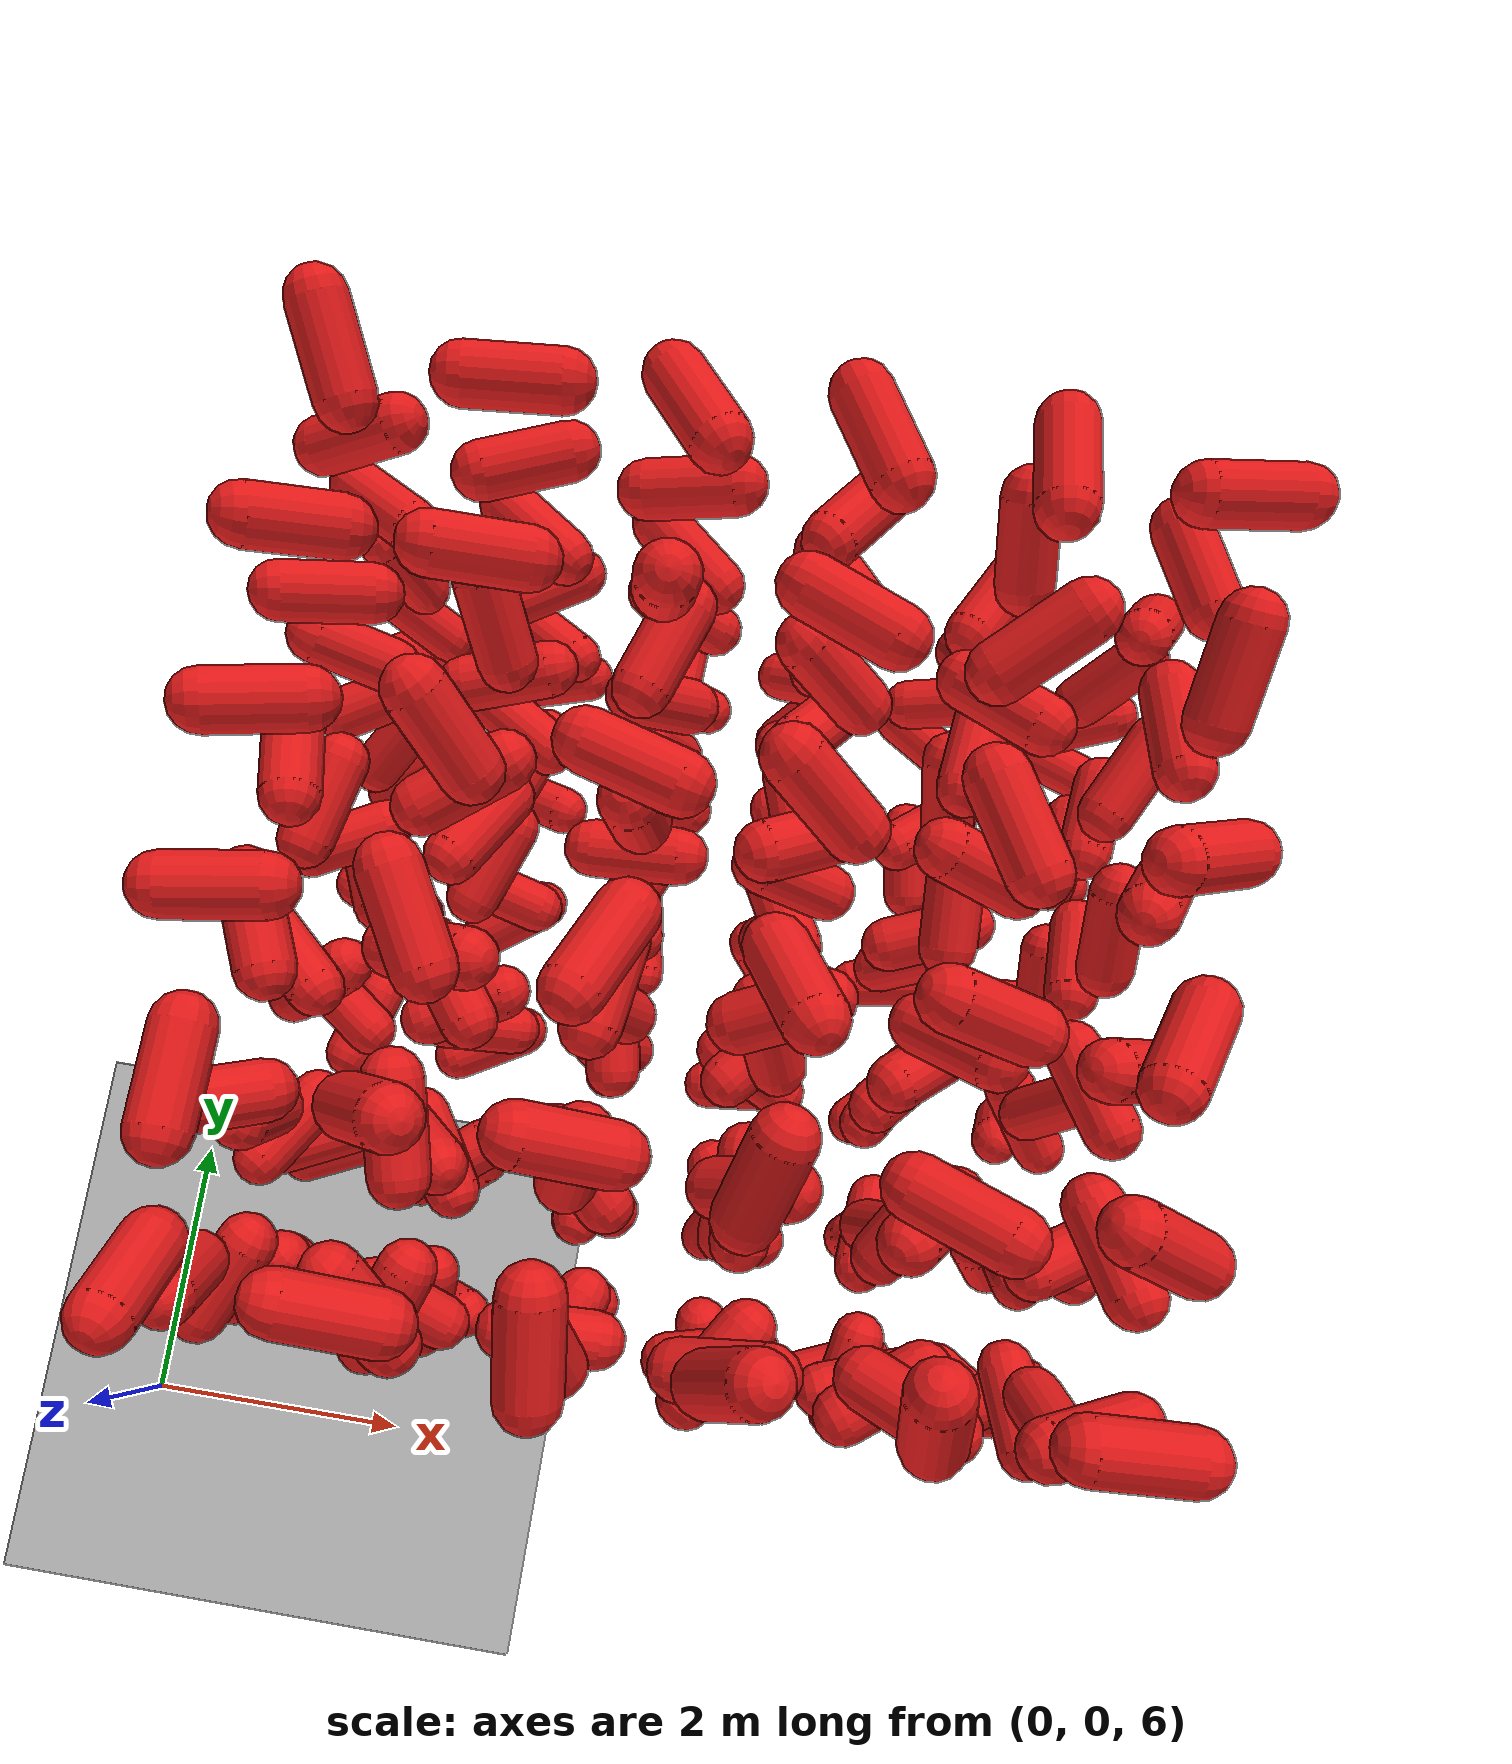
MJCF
<mujoco model="Humanoid and 100 objects">
    <compiler angle="degree"/>

    <option timestep="0.01" iterations="50" solver="PGS" jacobian="sparse" cone="elliptic" tolerance="1e-10"/>

    <size njmax="5000" nconmax="2000" nstack="1000000000"/>

    <default>
        <geom solimp=".9 .9 .01"/>

        <default class="object5">
			<geom type="capsule" material="geom" rgba=".9 .1 .1 1" size="0.200000 0.300000"/>
        </default>
    </default>

    <asset>
        <texture type="skybox" builtin="gradient" width="128" height="128" rgb1=".4 .6 .8" rgb2="0 0 0"/>
        <texture name="texgeom" type="cube" builtin="flat" mark="cross" width="128" height="128"
            rgb1="0.6 0.6 0.6" rgb2="0.6 0.6 0.6" markrgb="1 1 1"/>
        <texture name="texplane" type="2d" builtin="checker" rgb1=".4 .4 .4" rgb2=".6 .6 .6"
            width="512" height="512"/>
        <material name='geom' texture="texgeom" texuniform="true"/>
        <material name='MatPlane' reflectance='0.3' texture="texplane" texrepeat="1 1" texuniform="true"/>
    </asset>

    <visual>
        <quality shadowsize="4096" offsamples="8"/>
        <map znear="0.1" force="0.05"/>
    </visual>

    <statistic extent="4"/>

    <worldbody>
        <light directional="true" diffuse=".8 .8 .8" pos="0 0 10" dir="0 0 -10"/>

        <geom pos="0 0 0" type="plane" size="3 3 .5" rgba=".7 .7 .7 1" material="MatPlane"/>
		<body pos="1.100685 1.100924 6.100636" quat="0.099151 0.833998 -0.326844 0.433348"> <freejoint/> <geom class="object5"/> </body>
		<body pos="1.100665 1.100165 7.200969" quat="-0.034812 -0.574533 -0.021455 0.817459"> <freejoint/> <geom class="object5"/> </body>
		<body pos="1.100813 1.100318 8.300936" quat="0.347340 0.032246 -0.885718 0.306299"> <freejoint/> <geom class="object5"/> </body>
		<body pos="1.100121 1.100844 9.400553" quat="0.505734 0.430077 -0.683994 0.302356"> <freejoint/> <geom class="object5"/> </body>
		<body pos="1.100548 1.100044 10.500270" quat="0.170606 -0.973206 -0.150410 -0.033786"> <freejoint/> <geom class="object5"/> </body>
		<body pos="1.100652 1.100367 11.600436" quat="-0.135490 0.462861 0.798931 0.359321"> <freejoint/> <geom class="object5"/> </body>
		<body pos="1.100761 2.200785 6.100117" quat="0.479204 0.260622 0.663162 0.512500"> <freejoint/> <geom class="object5"/> </body>
		<body pos="1.100874 2.200957 7.200347" quat="-0.297856 0.736073 0.006612 0.607811"> <freejoint/> <geom class="object5"/> </body>
		<body pos="1.100844 2.200606 8.300888" quat="-0.634678 0.591146 -0.487117 -0.102213"> <freejoint/> <geom class="object5"/> </body>
		<body pos="1.100990 2.200662 9.400189" quat="0.924194 0.097111 -0.103729 0.354508"> <freejoint/> <geom class="object5"/> </body>
		<body pos="1.100515 2.200759 10.500719" quat="0.296479 -0.832026 0.177866 -0.433816"> <freejoint/> <geom class="object5"/> </body>
		<body pos="1.100290 2.200459 11.600051" quat="-0.528345 0.578171 0.463995 0.413858"> <freejoint/> <geom class="object5"/> </body>
		<body pos="1.100904 3.300374 6.100719" quat="0.670498 -0.681516 -0.066167 -0.285641"> <freejoint/> <geom class="object5"/> </body>
		<body pos="1.100613 3.300444 7.200881" quat="-0.365973 0.639193 -0.079595 -0.671685"> <freejoint/> <geom class="object5"/> </body>
		<body pos="1.100683 3.300328 8.300869" quat="0.491349 0.186639 0.386521 0.757854"> <freejoint/> <geom class="object5"/> </body>
		<body pos="1.100051 3.300047 9.400902" quat="-0.689439 -0.202723 -0.622474 0.310005"> <freejoint/> <geom class="object5"/> </body>
		<body pos="1.100926 3.300282 10.500573" quat="-0.193666 -0.082173 0.703336 0.679013"> <freejoint/> <geom class="object5"/> </body>
		<body pos="1.100928 3.300356 11.600857" quat="-0.549944 -0.529169 0.459628 0.454184"> <freejoint/> <geom class="object5"/> </body>
		<body pos="1.100643 4.400646 6.100351" quat="-0.595078 -0.243798 0.631753 0.432819"> <freejoint/> <geom class="object5"/> </body>
		<body pos="1.100476 4.400974 7.200222" quat="-0.563090 -0.688060 0.178762 -0.421364"> <freejoint/> <geom class="object5"/> </body>
		<body pos="1.100560 4.400628 8.300522" quat="0.551702 0.077776 0.730240 0.395380"> <freejoint/> <geom class="object5"/> </body>
		<body pos="1.100726 4.400923 9.400873" quat="-0.417071 0.249493 -0.634412 -0.601104"> <freejoint/> <geom class="object5"/> </body>
		<body pos="1.100935 4.400615 10.500704" quat="0.763968 0.514187 0.300934 -0.247796"> <freejoint/> <geom class="object5"/> </body>
		<body pos="1.100787 4.400544 11.600238" quat="-0.601306 0.261081 0.581095 -0.482283"> <freejoint/> <geom class="object5"/> </body>
		<body pos="1.100727 5.500460 6.100269" quat="0.685004 0.125862 0.436248 0.569750"> <freejoint/> <geom class="object5"/> </body>
		<body pos="1.100337 5.500131 7.200084" quat="0.492802 0.031671 0.494037 0.715591"> <freejoint/> <geom class="object5"/> </body>
		<body pos="1.100806 5.500117 8.300963" quat="-0.631813 -0.536168 0.528195 0.185326"> <freejoint/> <geom class="object5"/> </body>
		<body pos="1.100318 5.500653 9.400633" quat="-0.609975 0.401693 0.338492 -0.593293"> <freejoint/> <geom class="object5"/> </body>
		<body pos="1.100097 5.500186 10.500883" quat="-0.382426 0.715111 -0.334082 0.480371"> <freejoint/> <geom class="object5"/> </body>
		<body pos="1.100228 5.500828 11.600973" quat="-0.401602 0.690174 -0.480022 0.363254"> <freejoint/> <geom class="object5"/> </body>
		<body pos="1.100208 6.600666 6.100521" quat="0.532178 -0.175354 0.823274 -0.090871"> <freejoint/> <geom class="object5"/> </body>
		<body pos="1.100697 6.600055 7.200509" quat="0.307901 -0.463787 -0.007311 0.830690"> <freejoint/> <geom class="object5"/> </body>
		<body pos="1.100409 6.600482 8.300799" quat="-0.932434 0.031044 0.246730 0.262160"> <freejoint/> <geom class="object5"/> </body>
		<body pos="1.100534 6.600896 9.400380" quat="-0.179305 -0.522436 0.607183 0.571174"> <freejoint/> <geom class="object5"/> </body>
		<body pos="1.100452 6.600242 10.500507" quat="0.844479 -0.189631 0.480213 -0.142446"> <freejoint/> <geom class="object5"/> </body>
		<body pos="1.100647 6.600358 11.600135" quat="0.041708 -0.275023 0.506747 0.815984"> <freejoint/> <geom class="object5"/> </body>
		<body pos="2.200513 1.100149 6.100047" quat="0.824413 0.282296 0.326376 0.366238"> <freejoint/> <geom class="object5"/> </body>
		<body pos="2.200069 1.100440 7.200352" quat="-0.365502 -0.689079 0.576649 -0.243009"> <freejoint/> <geom class="object5"/> </body>
		<body pos="2.200206 1.100083 8.300441" quat="-0.132918 0.699710 -0.506117 0.486400"> <freejoint/> <geom class="object5"/> </body>
		<body pos="2.200322 1.100509 9.400315" quat="-0.649746 0.304149 -0.488097 -0.497076"> <freejoint/> <geom class="object5"/> </body>
		<body pos="2.200927 1.100515 10.500152" quat="0.823013 -0.216495 -0.453244 -0.265235"> <freejoint/> <geom class="object5"/> </body>
		<body pos="2.200307 1.100786 11.600739" quat="-0.075847 0.565549 0.031413 -0.820619"> <freejoint/> <geom class="object5"/> </body>
		<body pos="2.200879 2.200261 6.100244" quat="-0.791482 0.313027 -0.135597 0.507134"> <freejoint/> <geom class="object5"/> </body>
		<body pos="2.200149 2.200064 7.200567" quat="-0.230870 0.380995 0.625725 -0.640321"> <freejoint/> <geom class="object5"/> </body>
		<body pos="2.200459 2.200750 8.300134" quat="-0.685829 0.516228 0.493119 0.141357"> <freejoint/> <geom class="object5"/> </body>
		<body pos="2.200765 2.200531 9.400688" quat="0.060958 -0.789566 0.448428 0.414467"> <freejoint/> <geom class="object5"/> </body>
		<body pos="2.200770 2.200821 10.500891" quat="-0.551616 -0.585164 -0.514608 0.297457"> <freejoint/> <geom class="object5"/> </body>
		<body pos="2.200821 2.200181 11.600833" quat="-0.947585 -0.095178 -0.264480 -0.151902"> <freejoint/> <geom class="object5"/> </body>
		<body pos="2.200094 3.300493 6.100450" quat="0.727931 -0.255947 0.628534 0.097740"> <freejoint/> <geom class="object5"/> </body>
		<body pos="2.200051 3.300467 7.200960" quat="0.308220 0.624870 0.564330 0.442798"> <freejoint/> <geom class="object5"/> </body>
		<body pos="2.200820 3.300686 8.300078" quat="-0.611722 0.589695 -0.290812 0.439869"> <freejoint/> <geom class="object5"/> </body>
		<body pos="2.200792 3.300416 9.400004" quat="0.525758 0.702608 -0.069272 0.474471"> <freejoint/> <geom class="object5"/> </body>
		<body pos="2.200423 3.300472 10.500196" quat="-0.377587 -0.456424 -0.173375 -0.786795"> <freejoint/> <geom class="object5"/> </body>
		<body pos="2.200185 3.300157 11.600080" quat="-0.361269 -0.677964 0.349156 -0.536600"> <freejoint/> <geom class="object5"/> </body>
		<body pos="2.200586 4.400846 6.100243" quat="-0.216286 0.468517 0.663667 -0.541533"> <freejoint/> <geom class="object5"/> </body>
		<body pos="2.200628 4.400600 7.200871" quat="0.531172 -0.151936 0.807551 -0.206479"> <freejoint/> <geom class="object5"/> </body>
		<body pos="2.200810 4.400115 8.300329" quat="0.365286 0.671141 0.416520 -0.492592"> <freejoint/> <geom class="object5"/> </body>
		<body pos="2.200494 4.400639 9.400447" quat="0.440994 -0.773336 -0.205710 -0.406397"> <freejoint/> <geom class="object5"/> </body>
		<body pos="2.200903 4.400888 10.500112" quat="-0.749480 0.265078 -0.586573 -0.154744"> <freejoint/> <geom class="object5"/> </body>
		<body pos="2.200681 4.400513 11.600538" quat="0.433133 0.582183 0.687929 -0.014579"> <freejoint/> <geom class="object5"/> </body>
		<body pos="2.200867 5.500140 6.100260" quat="0.237595 0.603593 -0.570179 -0.504104"> <freejoint/> <geom class="object5"/> </body>
		<body pos="2.200026 5.500688 7.200603" quat="-0.636873 -0.509596 0.504740 -0.282742"> <freejoint/> <geom class="object5"/> </body>
		<body pos="2.200964 5.500713 8.300771" quat="-0.015391 0.641444 -0.387018 0.662215"> <freejoint/> <geom class="object5"/> </body>
		<body pos="2.200760 5.500481 9.400632" quat="0.647859 0.331464 -0.678466 -0.100466"> <freejoint/> <geom class="object5"/> </body>
		<body pos="2.200304 5.500030 10.500316" quat="0.667875 -0.391216 0.110355 0.623470"> <freejoint/> <geom class="object5"/> </body>
		<body pos="2.200205 5.500140 11.600689" quat="-0.669934 0.263446 0.532280 -0.445492"> <freejoint/> <geom class="object5"/> </body>
		<body pos="2.200168 6.600706 6.100444" quat="0.807206 -0.173270 0.557310 -0.088330"> <freejoint/> <geom class="object5"/> </body>
		<body pos="2.200040 6.600284 7.200469" quat="-0.146588 -0.536701 0.600127 0.574727"> <freejoint/> <geom class="object5"/> </body>
		<body pos="2.200403 6.600209 8.300121" quat="-0.059683 0.634152 0.353573 0.685036"> <freejoint/> <geom class="object5"/> </body>
		<body pos="2.200014 6.600528 9.400475" quat="0.705426 0.214559 0.640831 -0.213715"> <freejoint/> <geom class="object5"/> </body>
		<body pos="2.200989 6.600606 10.500166" quat="-0.526390 0.658700 -0.318206 0.433328"> <freejoint/> <geom class="object5"/> </body>
		<body pos="2.200242 6.600815 11.600617" quat="-0.264476 -0.669347 0.182835 0.669775"> <freejoint/> <geom class="object5"/> </body>
		<body pos="3.300643 1.100814 6.100658" quat="0.273320 0.174071 -0.937181 0.129181"> <freejoint/> <geom class="object5"/> </body>
		<body pos="3.300075 1.100512 7.200633" quat="0.704158 -0.531707 0.074398 -0.464666"> <freejoint/> <geom class="object5"/> </body>
		<body pos="3.300055 1.100776 8.300727" quat="0.613110 -0.740881 0.004749 -0.274169"> <freejoint/> <geom class="object5"/> </body>
		<body pos="3.300856 1.100727 9.400348" quat="0.384284 -0.636428 0.457489 -0.487841"> <freejoint/> <geom class="object5"/> </body>
		<body pos="3.300082 1.100531 10.500646" quat="-0.357535 0.267713 -0.173881 -0.877647"> <freejoint/> <geom class="object5"/> </body>
		<body pos="3.300358 1.100926 11.600142" quat="0.821414 -0.511867 -0.178306 -0.177422"> <freejoint/> <geom class="object5"/> </body>
		<body pos="3.300060 2.200250 6.100506" quat="-0.758604 0.588356 -0.069865 0.271063"> <freejoint/> <geom class="object5"/> </body>
		<body pos="3.300202 2.200878 7.200831" quat="-0.521377 -0.439458 -0.369905 0.631042"> <freejoint/> <geom class="object5"/> </body>
		<body pos="3.300734 2.200270 8.300392" quat="0.302181 0.253772 -0.716239 -0.575576"> <freejoint/> <geom class="object5"/> </body>
		<body pos="3.300817 2.200940 9.400075" quat="-0.436308 -0.822612 -0.076259 -0.356552"> <freejoint/> <geom class="object5"/> </body>
		<body pos="3.300390 2.200301 10.500024" quat="-0.805639 0.154073 -0.184943 -0.541298"> <freejoint/> <geom class="object5"/> </body>
		<body pos="3.300378 2.200640 11.600157" quat="-0.558651 -0.405773 0.363071 0.625649"> <freejoint/> <geom class="object5"/> </body>
		<body pos="3.300296 3.300161 6.100827" quat="-0.061688 0.551731 0.806145 0.204737"> <freejoint/> <geom class="object5"/> </body>
		<body pos="3.300803 3.300833 7.200804" quat="0.672280 0.172530 -0.077706 -0.715706"> <freejoint/> <geom class="object5"/> </body>
		<body pos="3.300485 3.300435 8.300566" quat="-0.308960 -0.499944 0.592789 -0.550637"> <freejoint/> <geom class="object5"/> </body>
		<body pos="3.300998 3.300938 9.400545" quat="0.609629 0.176242 -0.118757 -0.763667"> <freejoint/> <geom class="object5"/> </body>
		<body pos="3.300311 3.300004 10.500753" quat="0.541043 0.559458 0.383588 -0.497132"> <freejoint/> <geom class="object5"/> </body>
		<body pos="3.300358 3.300263 11.600152" quat="0.217677 -0.575287 -0.581186 -0.532808"> <freejoint/> <geom class="object5"/> </body>
		<body pos="3.300217 4.400687 6.100862" quat="-0.351999 0.521380 -0.535897 -0.563094"> <freejoint/> <geom class="object5"/> </body>
		<body pos="3.300692 4.400414 7.200737" quat="-0.435317 -0.248059 0.305063 -0.809878"> <freejoint/> <geom class="object5"/> </body>
		<body pos="3.300672 4.400907 8.300972" quat="0.588249 -0.441582 0.581663 0.347329"> <freejoint/> <geom class="object5"/> </body>
		<body pos="3.300601 4.400489 9.400694" quat="-0.627903 0.240603 0.698169 -0.245780"> <freejoint/> <geom class="object5"/> </body>
		<body pos="3.300079 4.400732 10.500289" quat="-0.050041 0.681248 -0.729567 0.033609"> <freejoint/> <geom class="object5"/> </body>
		<body pos="3.300901 4.400909 11.600044" quat="-0.050805 -0.667017 0.237814 0.704238"> <freejoint/> <geom class="object5"/> </body>
		<body pos="3.300768 5.500112 6.100053" quat="-0.332308 0.553818 0.301195 0.701526"> <freejoint/> <geom class="object5"/> </body>
		<body pos="3.300293 5.500005 7.200713" quat="-0.707139 -0.286805 -0.633111 0.129875"> <freejoint/> <geom class="object5"/> </body>
		<body pos="3.300508 5.500729 8.300291" quat="0.553131 0.189034 -0.071595 -0.808200"> <freejoint/> <geom class="object5"/> </body>
		<body pos="3.300738 5.500823 9.400271" quat="0.022418 -0.901078 -0.245214 -0.356966"> <freejoint/> <geom class="object5"/> </body>
		<body pos="3.300437 5.500447 10.500348" quat="-0.373457 0.534216 0.448408 0.611615"> <freejoint/> <geom class="object5"/> </body>
		<body pos="3.300236 5.500424 11.600925" quat="-0.687696 -0.057719 -0.108677 0.715495"> <freejoint/> <geom class="object5"/> </body>
		<body pos="3.300708 6.600915 6.100606" quat="0.525573 -0.308435 0.453259 -0.650536"> <freejoint/> <geom class="object5"/> </body>
		<body pos="3.300954 6.600717 7.200400" quat="0.380153 -0.536574 -0.599972 -0.455637"> <freejoint/> <geom class="object5"/> </body>
		<body pos="3.300456 6.600199 8.300796" quat="0.109363 -0.796059 0.352891 -0.479372"> <freejoint/> <geom class="object5"/> </body>
		<body pos="3.300118 6.600492 9.400381" quat="-0.400666 0.196145 -0.722123 0.528709"> <freejoint/> <geom class="object5"/> </body>
		<body pos="3.300270 6.600958 10.500711" quat="-0.704970 -0.197012 -0.597225 -0.327912"> <freejoint/> <geom class="object5"/> </body>
		<body pos="3.300296 6.600306 11.600114" quat="0.804293 0.495988 0.323662 0.048491"> <freejoint/> <geom class="object5"/> </body>
		<body pos="4.400785 1.100514 6.100204" quat="-0.030948 -0.745495 -0.662223 0.068851"> <freejoint/> <geom class="object5"/> </body>
		<body pos="4.400001 1.100430 7.200057" quat="0.291357 0.467248 0.798376 -0.243694"> <freejoint/> <geom class="object5"/> </body>
		<body pos="4.400040 1.100507 8.300475" quat="0.175177 0.599109 0.329977 0.708165"> <freejoint/> <geom class="object5"/> </body>
		<body pos="4.400528 1.100976 9.400949" quat="-0.411847 0.622030 0.276648 0.605745"> <freejoint/> <geom class="object5"/> </body>
		<body pos="4.400532 1.100743 10.500042" quat="0.208255 -0.735485 -0.454097 0.457698"> <freejoint/> <geom class="object5"/> </body>
		<body pos="4.400148 1.100286 11.600041" quat="0.842694 0.051880 0.212113 0.492122"> <freejoint/> <geom class="object5"/> </body>
		<body pos="4.400683 2.200325 6.100872" quat="-0.641153 0.417465 0.122807 0.632111"> <freejoint/> <geom class="object5"/> </body>
		<body pos="4.400284 2.200565 7.200063" quat="-0.326809 -0.765225 -0.504983 0.229388"> <freejoint/> <geom class="object5"/> </body>
		<body pos="4.400749 2.200504 8.300062" quat="0.650472 -0.312227 -0.626273 -0.295267"> <freejoint/> <geom class="object5"/> </body>
		<body pos="4.400136 2.200049 9.400510" quat="0.385179 -0.331272 -0.609287 -0.608824"> <freejoint/> <geom class="object5"/> </body>
		<body pos="4.400014 2.200628 10.500197" quat="0.505852 -0.319419 0.169761 -0.783113"> <freejoint/> <geom class="object5"/> </body>
		<body pos="4.400590 2.200982 11.600047" quat="-0.721114 0.250134 -0.335934 -0.551884"> <freejoint/> <geom class="object5"/> </body>
		<body pos="4.400285 3.300331 6.100720" quat="-0.712928 0.004845 -0.697152 -0.075428"> <freejoint/> <geom class="object5"/> </body>
		<body pos="4.400709 3.300724 7.200259" quat="0.075789 0.795523 -0.232518 0.554378"> <freejoint/> <geom class="object5"/> </body>
		<body pos="4.400095 3.300998 8.300741" quat="0.640682 0.676830 -0.192716 -0.307064"> <freejoint/> <geom class="object5"/> </body>
		<body pos="4.400756 3.300485 9.400857" quat="-0.334138 -0.535620 -0.759483 0.156996"> <freejoint/> <geom class="object5"/> </body>
		<body pos="4.400681 3.300991 10.500806" quat="-0.469357 -0.299352 -0.411274 -0.721766"> <freejoint/> <geom class="object5"/> </body>
		<body pos="4.400325 3.300200 11.600527" quat="-0.641529 -0.463432 0.097666 -0.603434"> <freejoint/> <geom class="object5"/> </body>
		<body pos="4.400554 4.400862 6.100692" quat="0.840699 -0.247184 -0.103635 0.470516"> <freejoint/> <geom class="object5"/> </body>
		<body pos="4.400429 4.400250 7.200185" quat="-0.053878 -0.568238 0.814213 0.106115"> <freejoint/> <geom class="object5"/> </body>
		<body pos="4.400469 4.400196 8.300738" quat="0.422349 0.065861 0.641498 -0.636995"> <freejoint/> <geom class="object5"/> </body>
		<body pos="4.400920 4.400296 9.400882" quat="0.880067 0.027598 -0.458783 -0.119330"> <freejoint/> <geom class="object5"/> </body>
		<body pos="4.400879 4.400321 10.500184" quat="0.302161 0.600460 0.058211 -0.738077"> <freejoint/> <geom class="object5"/> </body>
		<body pos="4.400008 4.400233 11.600210" quat="-0.443026 -0.727342 -0.486906 -0.193967"> <freejoint/> <geom class="object5"/> </body>
		<body pos="4.400779 5.500551 6.100471" quat="-0.536455 -0.303532 -0.656568 0.434745"> <freejoint/> <geom class="object5"/> </body>
		<body pos="4.400323 5.500472 7.200694" quat="-0.490923 -0.606792 0.330201 -0.530816"> <freejoint/> <geom class="object5"/> </body>
		<body pos="4.400517 5.500525 8.300414" quat="-0.524488 0.062642 -0.561971 0.636536"> <freejoint/> <geom class="object5"/> </body>
		<body pos="4.400898 5.500221 9.400089" quat="0.556121 0.430892 0.133288 -0.698066"> <freejoint/> <geom class="object5"/> </body>
		<body pos="4.400003 5.500580 10.500633" quat="0.436649 0.367286 0.820913 -0.023251"> <freejoint/> <geom class="object5"/> </body>
		<body pos="4.400089 5.500527 11.600273" quat="0.599737 -0.569953 -0.409571 0.384345"> <freejoint/> <geom class="object5"/> </body>
		<body pos="4.400094 6.600339 6.100630" quat="-0.655518 0.427865 -0.049311 0.620319"> <freejoint/> <geom class="object5"/> </body>
		<body pos="4.400103 6.600638 7.200063" quat="0.583359 -0.297150 0.410626 -0.634650"> <freejoint/> <geom class="object5"/> </body>
		<body pos="4.400914 6.600372 8.300903" quat="-0.616676 -0.718409 -0.201486 0.251004"> <freejoint/> <geom class="object5"/> </body>
		<body pos="4.400191 6.600071 9.400658" quat="0.810089 0.430229 0.391239 -0.074771"> <freejoint/> <geom class="object5"/> </body>
		<body pos="4.400779 6.600058 10.500034" quat="-0.726984 -0.583319 0.078294 0.353699"> <freejoint/> <geom class="object5"/> </body>
		<body pos="4.400112 6.600898 11.600977" quat="0.403228 -0.668769 0.281722 0.557484"> <freejoint/> <geom class="object5"/> </body>
		<body pos="5.500768 1.100932 6.100955" quat="-0.454684 0.298263 0.670312 -0.504959"> <freejoint/> <geom class="object5"/> </body>
		<body pos="5.500422 1.100782 7.200618" quat="0.611229 0.717644 -0.300115 0.146006"> <freejoint/> <geom class="object5"/> </body>
		<body pos="5.500082 1.100743 8.300834" quat="0.525941 0.598621 -0.284120 -0.533212"> <freejoint/> <geom class="object5"/> </body>
		<body pos="5.500250 1.100765 9.400511" quat="0.290323 -0.327249 -0.634589 0.637117"> <freejoint/> <geom class="object5"/> </body>
		<body pos="5.500155 1.100679 10.500535" quat="0.648854 -0.155542 0.485052 -0.565261"> <freejoint/> <geom class="object5"/> </body>
		<body pos="5.500308 1.100266 11.600298" quat="-0.500684 0.066023 0.246190 0.827253"> <freejoint/> <geom class="object5"/> </body>
		<body pos="5.500156 2.200932 6.100940" quat="0.791644 -0.017606 0.005901 0.610700"> <freejoint/> <geom class="object5"/> </body>
		<body pos="5.500694 2.200123 7.200731" quat="0.560617 0.310823 -0.437462 0.630654"> <freejoint/> <geom class="object5"/> </body>
		<body pos="5.500307 2.200860 8.300994" quat="-0.127145 0.767293 0.616816 -0.120970"> <freejoint/> <geom class="object5"/> </body>
		<body pos="5.500931 2.200057 9.400721" quat="-0.252263 -0.759428 -0.428419 0.419631"> <freejoint/> <geom class="object5"/> </body>
		<body pos="5.500359 2.200117 10.500121" quat="0.386434 -0.834122 0.375904 -0.116645"> <freejoint/> <geom class="object5"/> </body>
		<body pos="5.500360 2.200156 11.600464" quat="-0.275002 -0.610265 0.008225 -0.742889"> <freejoint/> <geom class="object5"/> </body>
		<body pos="5.500827 3.300519 6.100199" quat="0.273683 -0.916090 -0.033800 -0.291092"> <freejoint/> <geom class="object5"/> </body>
		<body pos="5.500190 3.300534 7.200213" quat="-0.696416 -0.348922 0.524494 -0.343748"> <freejoint/> <geom class="object5"/> </body>
		<body pos="5.500709 3.300742 8.300315" quat="0.538501 -0.128840 0.713339 0.429611"> <freejoint/> <geom class="object5"/> </body>
		<body pos="5.500493 3.300250 9.400964" quat="-0.233129 -0.348531 -0.729786 -0.539990"> <freejoint/> <geom class="object5"/> </body>
		<body pos="5.500520 3.300109 10.500198" quat="-0.132945 -0.433659 0.125603 -0.882320"> <freejoint/> <geom class="object5"/> </body>
		<body pos="5.500477 3.300087 11.600463" quat="0.296360 -0.634646 0.583784 -0.410599"> <freejoint/> <geom class="object5"/> </body>
		<body pos="5.500648 4.400620 6.100902" quat="0.699214 -0.103538 0.706799 0.028563"> <freejoint/> <geom class="object5"/> </body>
		<body pos="5.500574 4.400768 7.200041" quat="-0.751202 -0.134057 -0.335140 -0.552635"> <freejoint/> <geom class="object5"/> </body>
		<body pos="5.500028 4.400250 8.300635" quat="-0.723034 0.429782 -0.456010 0.290798"> <freejoint/> <geom class="object5"/> </body>
		<body pos="5.500314 4.400249 9.400226" quat="0.097437 -0.026813 -0.579262 -0.808853"> <freejoint/> <geom class="object5"/> </body>
		<body pos="5.500394 4.400784 10.500524" quat="0.450867 -0.255586 0.819730 -0.243798"> <freejoint/> <geom class="object5"/> </body>
		<body pos="5.500791 4.400210 11.600817" quat="-0.294376 0.081280 -0.719790 0.623409"> <freejoint/> <geom class="object5"/> </body>
		<body pos="5.500718 5.500846 6.100398" quat="0.310521 -0.108838 -0.559694 -0.760574"> <freejoint/> <geom class="object5"/> </body>
		<body pos="5.500815 5.500104 7.200095" quat="0.200051 0.400679 0.670613 0.591366"> <freejoint/> <geom class="object5"/> </body>
		<body pos="5.500579 5.500632 8.300239" quat="-0.096628 -0.441113 0.806099 -0.382475"> <freejoint/> <geom class="object5"/> </body>
		<body pos="5.500286 5.500592 9.400221" quat="0.411655 -0.580323 -0.518376 -0.474396"> <freejoint/> <geom class="object5"/> </body>
		<body pos="5.500667 5.500115 10.500074" quat="-0.724277 -0.027980 -0.585546 0.363009"> <freejoint/> <geom class="object5"/> </body>
		<body pos="5.500914 5.500331 11.600883" quat="0.508422 -0.547202 -0.023309 -0.664480"> <freejoint/> <geom class="object5"/> </body>
		<body pos="5.500472 6.600483 6.100013" quat="-0.507832 0.631560 0.145502 -0.567509"> <freejoint/> <geom class="object5"/> </body>
		<body pos="5.500784 6.600587 7.200320" quat="-0.698338 0.354091 -0.462138 0.416379"> <freejoint/> <geom class="object5"/> </body>
		<body pos="5.500945 6.600213 8.300772" quat="0.068318 -0.445647 0.861321 0.234217"> <freejoint/> <geom class="object5"/> </body>
		<body pos="5.500112 6.600769 9.400246" quat="-0.080168 -0.255894 -0.719500 -0.640633"> <freejoint/> <geom class="object5"/> </body>
		<body pos="5.500058 6.600104 10.500366" quat="-0.799933 0.393060 -0.117034 -0.438081"> <freejoint/> <geom class="object5"/> </body>
		<body pos="5.500664 6.600737 11.600198" quat="-0.494379 0.651626 -0.431889 -0.380059"> <freejoint/> <geom class="object5"/> </body>
		<body pos="6.600529 1.100070 6.100315" quat="-0.029329 -0.676515 0.370068 -0.636016"> <freejoint/> <geom class="object5"/> </body>
		<body pos="6.600395 1.100038 7.200860" quat="-0.687181 0.175480 -0.662720 -0.240397"> <freejoint/> <geom class="object5"/> </body>
		<body pos="6.600942 1.100793 8.300337" quat="-0.695593 -0.410459 -0.450759 0.380119"> <freejoint/> <geom class="object5"/> </body>
		<body pos="6.600094 1.100382 9.400952" quat="0.615492 0.051985 0.264155 -0.740736"> <freejoint/> <geom class="object5"/> </body>
		<body pos="6.600695 1.100290 10.500400" quat="-0.736808 -0.429334 0.379148 0.359212"> <freejoint/> <geom class="object5"/> </body>
		<body pos="6.600687 1.100339 11.600497" quat="-0.647832 0.205844 -0.718493 0.147343"> <freejoint/> <geom class="object5"/> </body>
		<body pos="6.600261 2.200040 6.100080" quat="0.642096 -0.231742 -0.027714 0.730233"> <freejoint/> <geom class="object5"/> </body>
		<body pos="6.600977 2.200808 7.200525" quat="0.922820 0.360386 0.135924 -0.007062"> <freejoint/> <geom class="object5"/> </body>
		<body pos="6.600419 2.200997 8.300781" quat="0.571062 -0.529591 -0.592530 0.205742"> <freejoint/> <geom class="object5"/> </body>
		<body pos="6.600138 2.200755 9.400012" quat="-0.766492 -0.246450 0.576901 -0.137615"> <freejoint/> <geom class="object5"/> </body>
		<body pos="6.600735 2.200222 10.500678" quat="0.783273 0.572965 0.214372 0.110631"> <freejoint/> <geom class="object5"/> </body>
		<body pos="6.600373 2.200753 11.600364" quat="-0.691373 -0.209223 0.385319 0.574246"> <freejoint/> <geom class="object5"/> </body>
		<body pos="6.600293 3.300661 6.100959" quat="0.163929 -0.907387 -0.353585 -0.157330"> <freejoint/> <geom class="object5"/> </body>
		<body pos="6.600354 3.300970 7.200847" quat="-0.466871 -0.332199 -0.782512 0.243618"> <freejoint/> <geom class="object5"/> </body>
		<body pos="6.600479 3.300177 8.300046" quat="-0.207729 -0.890425 0.346633 0.209376"> <freejoint/> <geom class="object5"/> </body>
		<body pos="6.600500 3.300581 9.400690" quat="-0.693025 -0.415077 -0.532540 0.252643"> <freejoint/> <geom class="object5"/> </body>
		<body pos="6.600418 3.300116 10.500694" quat="0.253945 0.521053 0.759413 0.295479"> <freejoint/> <geom class="object5"/> </body>
		<body pos="6.600391 3.300381 11.600218" quat="-0.394560 -0.406714 -0.352393 0.744799"> <freejoint/> <geom class="object5"/> </body>
		<body pos="6.600386 4.400148 6.100086" quat="0.644963 0.065707 0.751837 0.120192"> <freejoint/> <geom class="object5"/> </body>
		<body pos="6.600633 4.400784 7.200125" quat="0.436081 0.765325 0.438765 -0.177753"> <freejoint/> <geom class="object5"/> </body>
		<body pos="6.600473 4.400152 8.300436" quat="-0.377668 0.514720 -0.636482 -0.432806"> <freejoint/> <geom class="object5"/> </body>
		<body pos="6.600251 4.400813 9.400135" quat="0.695485 -0.354711 0.231036 0.580606"> <freejoint/> <geom class="object5"/> </body>
		<body pos="6.600393 4.400700 10.500665" quat="0.203400 -0.114313 0.932417 0.275969"> <freejoint/> <geom class="object5"/> </body>
		<body pos="6.600003 4.400082 11.600211" quat="0.756679 0.387210 -0.276999 -0.448081"> <freejoint/> <geom class="object5"/> </body>
		<body pos="6.600790 5.500327 6.100732" quat="0.521852 0.095355 -0.837844 -0.128821"> <freejoint/> <geom class="object5"/> </body>
		<body pos="6.600996 5.500986 7.200675" quat="0.486056 0.544916 0.427589 -0.532902"> <freejoint/> <geom class="object5"/> </body>
		<body pos="6.600789 5.500975 8.300220" quat="-0.673214 -0.604553 -0.231900 0.357100"> <freejoint/> <geom class="object5"/> </body>
		<body pos="6.600891 5.500858 9.400310" quat="0.449606 0.727537 0.254618 -0.451347"> <freejoint/> <geom class="object5"/> </body>
		<body pos="6.600698 5.500675 10.500249" quat="-0.514710 0.743487 -0.279636 -0.322652"> <freejoint/> <geom class="object5"/> </body>
		<body pos="6.600216 5.500303 11.600697" quat="-0.166820 0.147147 0.483931 0.846363"> <freejoint/> <geom class="object5"/> </body>
		<body pos="6.600212 6.600809 6.100691" quat="0.455997 0.634841 0.185101 0.595635"> <freejoint/> <geom class="object5"/> </body>
		<body pos="6.600425 6.600746 7.200986" quat="-0.554367 -0.600305 0.451680 0.358186"> <freejoint/> <geom class="object5"/> </body>
		<body pos="6.600220 6.600224 8.300571" quat="-0.699303 -0.014137 -0.399485 -0.592610"> <freejoint/> <geom class="object5"/> </body>
		<body pos="6.600911 6.600573 9.400112" quat="0.276367 -0.451377 0.830040 0.175821"> <freejoint/> <geom class="object5"/> </body>
		<body pos="6.600529 6.600906 10.500145" quat="0.135717 0.196380 -0.686697 -0.686631"> <freejoint/> <geom class="object5"/> </body>
		<body pos="6.600763 6.600228 11.600408" quat="0.747464 0.068718 -0.656732 0.072647"> <freejoint/> <geom class="object5"/> </body>

    </worldbody>
</mujoco>
